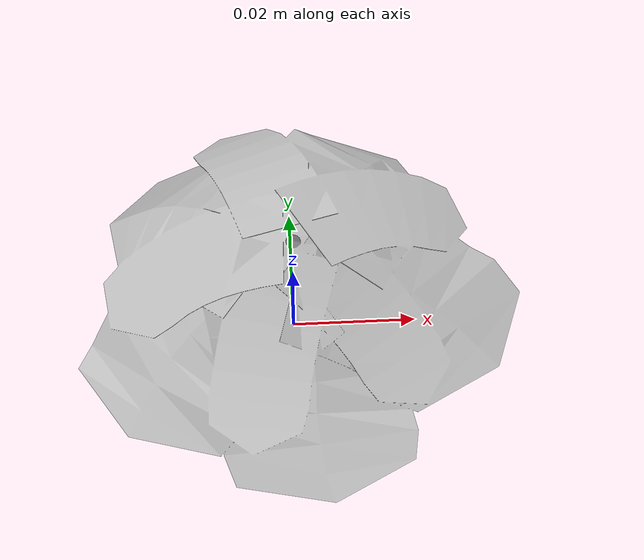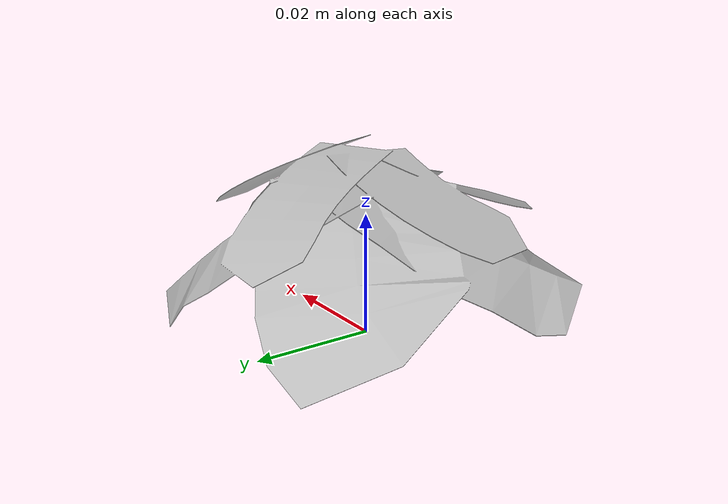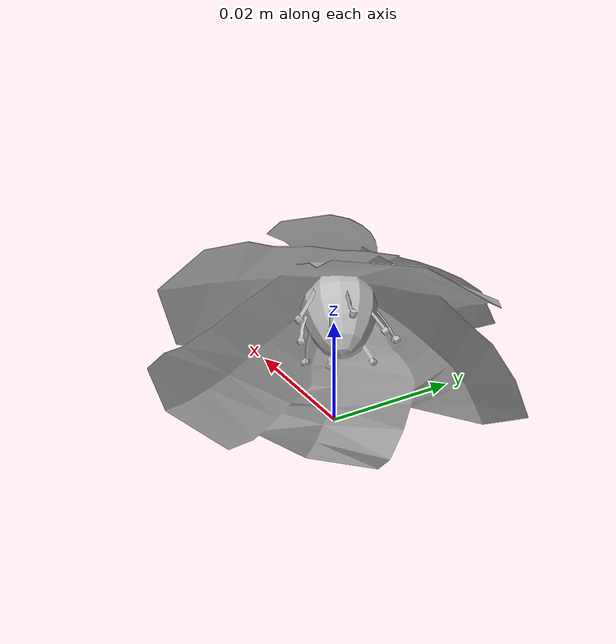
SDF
<?xml version='1.0'?>
<sdf version="1.5">
  <model name="strawberry_flower_03">
    <pose>0 0 0.02 3.14 0 0</pose>
    <static>false</static>
    <link name="link">
      <inertial>
        <mass>0.002</mass>
        <inertia>
          <ixx>0.000001397</ixx>
          <iyy>0.000001397</iyy>
          <izz>0.000000919</izz>
        </inertia>
      </inertial>
      <collision name="collision">
        <geometry>
          <mesh>
            <uri>model://strawberry_flower_03/meshes/visual.dae</uri>
          </mesh>
        </geometry>
      </collision>
      <visual name="visual">
        <geometry>
          <mesh>
            <uri>model://strawberry_flower_03/meshes/visual.dae</uri>
          </mesh>
        </geometry>
        <material>
          <script>
            <uri>model://strawberry_flower_03/materials/scripts</uri>
            <uri>model://strawberry_flower_03/materials/textures</uri>
            <name>strawberry_flower_03</name>
          </script>
        </material>
      </visual>
    </link>
  </model>
</sdf>
